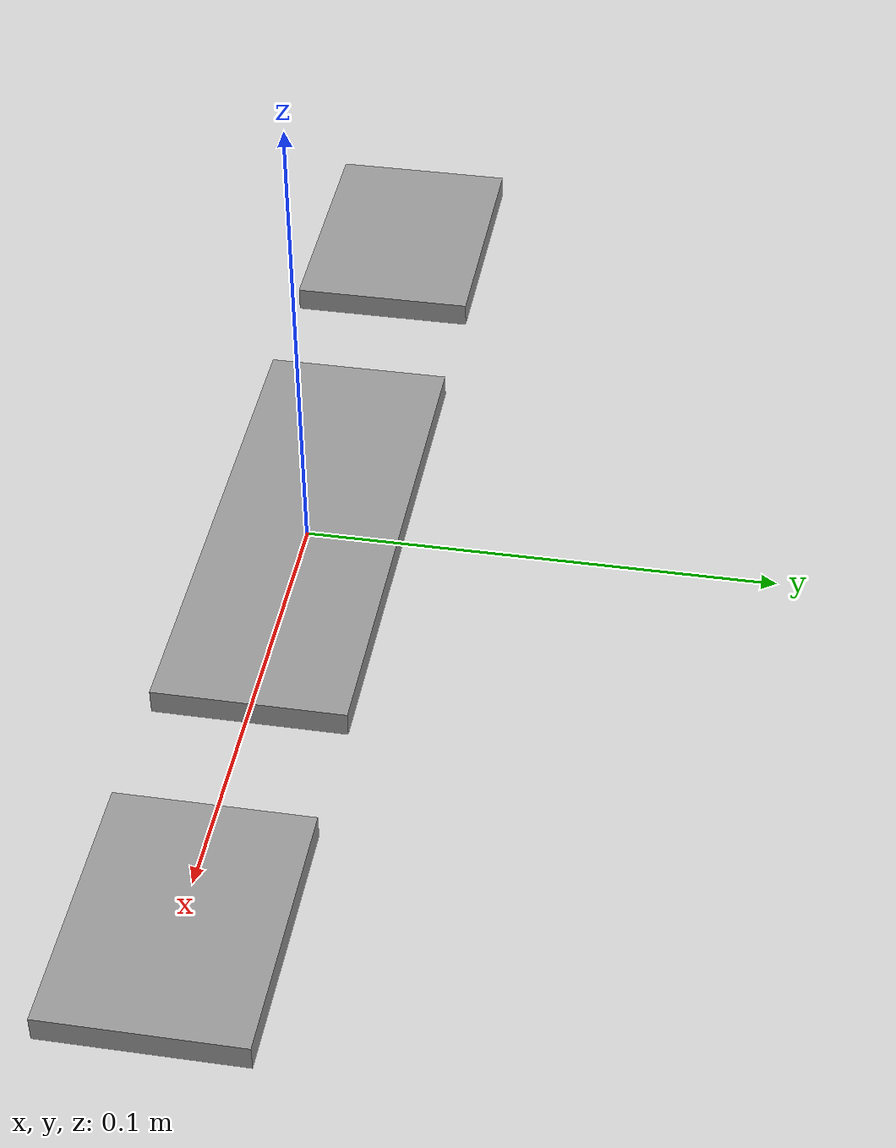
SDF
<?xml version='1.0'?>
<sdf version='1.5'>
  <model name='F450Gripper'>
    <link name='palm'>
      <pose frame=''>0 0 0 0 -0 0</pose>
      <inertial>
        <inertia>
          <ixx>0.0001</ixx>
          <ixy>0</ixy>
          <ixz>0</ixz>
          <iyy>0.0001</iyy>
          <iyz>0</iyz>
          <izz>0.0001</izz>
        </inertia>
        <mass>0.0001</mass>
        <pose frame=''>0 0 0 0 -0 0</pose>
      </inertial>
      <self_collide>1</self_collide>
      <kinematic>1</kinematic>
      <gravity>1</gravity>
      <visual name='visual'>
        <pose frame=''>0 0 0 0 -0 0</pose>
        <geometry>
          <box>
            <size>0.11 0.04 0.005305</size>
          </box>
        </geometry>
        <material>
          <lighting>1</lighting>
          <script>
            <uri>file://media/materials/scripts/gazebo.material</uri>
            <name>Gazebo/Grey</name>
          </script>
          <ambient>0.3 0.3 0.3 1</ambient>
          <diffuse>0.7 0.7 0.7 1</diffuse>
          <specular>0.01 0.01 0.01 1</specular>
          <emissive>0 0 0 1</emissive>
          <shader type='vertex'>
            <normal_map>__default__</normal_map>
          </shader>
        </material>
        <cast_shadows>1</cast_shadows>
        <transparency>0</transparency>
      </visual>
      <collision name='collision'>
        <laser_retro>0</laser_retro>
        <max_contacts>10</max_contacts>
        <pose frame=''>0 0 0 0 -0 0</pose>
        <geometry>
          <box>
            <size>0.11 0.04 0.005305</size>
          </box>
        </geometry>
        <surface>
          <friction>
            <ode>
              <mu>1</mu>
              <mu2>1</mu2>
              <fdir1>0 0 0</fdir1>
              <slip1>0</slip1>
              <slip2>0</slip2>
            </ode>
          </friction>
          <bounce>
            <restitution_coefficient>0</restitution_coefficient>
            <threshold>1e+06</threshold>
          </bounce>
          <contact>
            <collide_without_contact>0</collide_without_contact>
            <collide_without_contact_bitmask>1</collide_without_contact_bitmask>
            <collide_bitmask>1</collide_bitmask>
            <ode>
              <soft_cfm>0</soft_cfm>
              <soft_erp>0.2</soft_erp>
              <kp>1e+13</kp>
              <kd>1</kd>
              <max_vel>0.01</max_vel>
              <min_depth>0</min_depth>
            </ode>
            <bullet>
              <split_impulse>1</split_impulse>
              <split_impulse_penetration_threshold>-0.01</split_impulse_penetration_threshold>
              <soft_cfm>0</soft_cfm>
              <soft_erp>0.2</soft_erp>
              <kp>1e+13</kp>
              <kd>1</kd>
            </bullet>
          </contact>
        </surface>
      </collision>
    </link>
    <link name='finger_left'>
      <pose frame=''>0.11 0 -0 0 -0 0</pose>
      <inertial>
        <inertia>
          <ixx>1e-05</ixx>
          <ixy>0</ixy>
          <ixz>0</ixz>
          <iyy>1e-05</iyy>
          <iyz>0</iyz>
          <izz>1e-05</izz>
        </inertia>
        <mass>0.0001</mass>
        <pose frame=''>0 0 0 0 -0 0</pose>
      </inertial>
      <self_collide>1</self_collide>
      <kinematic>1</kinematic>
      <gravity>1</gravity>
      <visual name='ModelPreview_1::link_1_clone::visual'>
        <pose frame=''>0 0 0 0 -0 0</pose>
        <geometry>
          <box>
            <size>0.055 0.04 0.005305</size>
          </box>
        </geometry>
        <material>
          <lighting>1</lighting>
          <script>
            <uri>file://media/materials/scripts/gazebo.material</uri>
            <name>Gazebo/Grey</name>
          </script>
          <ambient>0.3 0.3 0.3 1</ambient>
          <diffuse>0.7 0.7 0.7 1</diffuse>
          <specular>0.01 0.01 0.01 1</specular>
          <emissive>0 0 0 1</emissive>
          <shader type='pixel'>
            <normal_map>__default__</normal_map>
          </shader>
        </material>
        <cast_shadows>1</cast_shadows>
        <transparency>0</transparency>
      </visual>
      <collision name='collision'>
        <laser_retro>0</laser_retro>
        <max_contacts>10</max_contacts>
        <pose frame=''>0 0 0 0 -0 0</pose>
        <geometry>
          <box>
            <size>0.11 0.04 0.005305</size>
          </box>
        </geometry>
        <surface>
          <friction>
            <ode>
              <mu>1</mu>
              <mu2>1</mu2>
              <fdir1>0 0 0</fdir1>
              <slip1>0</slip1>
              <slip2>0</slip2>
            </ode>
          </friction>
          <bounce>
            <restitution_coefficient>0</restitution_coefficient>
            <threshold>1e+06</threshold>
          </bounce>
          <contact>
            <collide_without_contact>0</collide_without_contact>
            <collide_without_contact_bitmask>1</collide_without_contact_bitmask>
            <collide_bitmask>1</collide_bitmask>
            <ode>
              <soft_cfm>0</soft_cfm>
              <soft_erp>0.2</soft_erp>
              <kp>1e+13</kp>
              <kd>1</kd>
              <max_vel>0.01</max_vel>
              <min_depth>0</min_depth>
            </ode>
            <bullet>
              <split_impulse>1</split_impulse>
              <split_impulse_penetration_threshold>-0.01</split_impulse_penetration_threshold>
              <soft_cfm>0</soft_cfm>
              <soft_erp>0.2</soft_erp>
              <kp>1e+13</kp>
              <kd>1</kd>
            </bullet>
          </contact>
        </surface>
      </collision>
    </link>
    <link name='finger_right'>
      <pose frame=''>-0.11 -0 0 0 -0 0</pose>
      <inertial>
        <inertia>
          <ixx>1e-05</ixx>
          <ixy>0</ixy>
          <ixz>0</ixz>
          <iyy>1e-05</iyy>
          <iyz>0</iyz>
          <izz>1e-05</izz>
        </inertia>
        <mass>0.0001</mass>
        <pose frame=''>0 0 0 0 -0 0</pose>
      </inertial>
      <self_collide>1</self_collide>
      <kinematic>1</kinematic>
      <gravity>1</gravity>
      <visual name='ModelPreview_1::link_1_clone_0::visual'>
        <pose frame=''>0 0 0 0 -0 0</pose>
        <geometry>
          <box>
            <size>0.055 0.04 0.005305</size>
          </box>
        </geometry>
        <material>
          <lighting>1</lighting>
          <script>
            <uri>file://media/materials/scripts/gazebo.material</uri>
            <name>Gazebo/Grey</name>
          </script>
          <ambient>0.3 0.3 0.3 1</ambient>
          <diffuse>0.7 0.7 0.7 1</diffuse>
          <specular>0.01 0.01 0.01 1</specular>
          <emissive>0 0 0 1</emissive>
          <shader type='pixel'>
            <normal_map>__default__</normal_map>
          </shader>
        </material>
        <cast_shadows>1</cast_shadows>
        <transparency>0</transparency>
      </visual>
      <collision name='collision'>
        <laser_retro>0</laser_retro>
        <max_contacts>10</max_contacts>
        <pose frame=''>0 0 0 0 -0 0</pose>
        <geometry>
          <box>
            <size>0.11 0.04 0.005305</size>
          </box>
        </geometry>
        <surface>
          <friction>
            <ode>
              <mu>1</mu>
              <mu2>1</mu2>
              <fdir1>0 0 0</fdir1>
              <slip1>0</slip1>
              <slip2>0</slip2>
            </ode>
          </friction>
          <bounce>
            <restitution_coefficient>0</restitution_coefficient>
            <threshold>1e+06</threshold>
          </bounce>
          <contact>
            <collide_without_contact>0</collide_without_contact>
            <collide_without_contact_bitmask>1</collide_without_contact_bitmask>
            <collide_bitmask>1</collide_bitmask>
            <ode>
              <soft_cfm>0</soft_cfm>
              <soft_erp>0.2</soft_erp>
              <kp>1e+13</kp>
              <kd>1</kd>
              <max_vel>0.01</max_vel>
              <min_depth>0</min_depth>
            </ode>
            <bullet>
              <split_impulse>1</split_impulse>
              <split_impulse_penetration_threshold>-0.01</split_impulse_penetration_threshold>
              <soft_cfm>0</soft_cfm>
              <soft_erp>0.2</soft_erp>
              <kp>1e+13</kp>
              <kd>1</kd>
            </bullet>
          </contact>
        </surface>
      </collision>
    </link>
    <joint name='leftJoint' type='revolute'>
      <parent>finger_left</parent>
      <child>palm</child>
      <pose frame=''>0.055 0 0 0 -0 0</pose>
      <axis>
        <xyz>0 1 0</xyz>
        <use_parent_model_frame>0</use_parent_model_frame>
        <limit>
          <lower>-2</lower>
          <upper>-0.05</upper>
          <effort>-1</effort>
          <velocity>-1</velocity>
        </limit>
        <dynamics>
          <spring_reference>0</spring_reference>
          <spring_stiffness>0</spring_stiffness>
          <damping>0</damping>
          <friction>0</friction>
        </dynamics>
      </axis>
      <physics>
        <ode>
          <cfm>0</cfm>
          <bounce>0</bounce>
          <velocity>0</velocity>
          <fudge_factor>0</fudge_factor>
          <limit>
            <cfm>0</cfm>
            <erp>0.2</erp>
          </limit>
          <suspension>
            <cfm>0</cfm>
            <erp>0.2</erp>
          </suspension>
        </ode>
      </physics>
    </joint>
    <joint name='rightJoint' type='revolute'>
      <parent>finger_right</parent>
      <child>palm</child>
      <pose frame=''>-0.055 0 0 0 -0 0</pose>
      <axis>
        <xyz>0 1 0</xyz>
        <use_parent_model_frame>0</use_parent_model_frame>
        <limit>
          <lower>0.05</lower>
          <upper>2</upper>
          <effort>-1</effort>
          <velocity>-1</velocity>
        </limit>
        <dynamics>
          <spring_reference>0</spring_reference>
          <spring_stiffness>0</spring_stiffness>
          <damping>0</damping>
          <friction>0</friction>
        </dynamics>
      </axis>
      <physics>
        <ode>
          <cfm>0</cfm>
          <bounce>0</bounce>
          <velocity>0</velocity>
          <fudge_factor>0</fudge_factor>
          <limit>
            <cfm>0</cfm>
            <erp>0.2</erp>
          </limit>
          <suspension>
            <cfm>0</cfm>
            <erp>0.2</erp>
          </suspension>
        </ode>
      </physics>
    </joint>
    <static>0</static>
    <allow_auto_disable>1</allow_auto_disable>
  </model>
</sdf>
